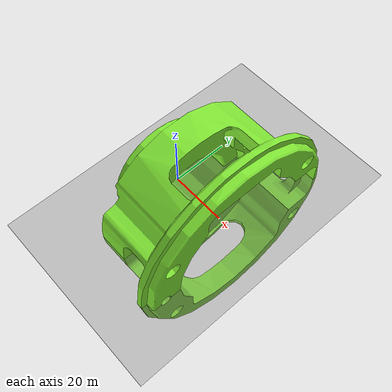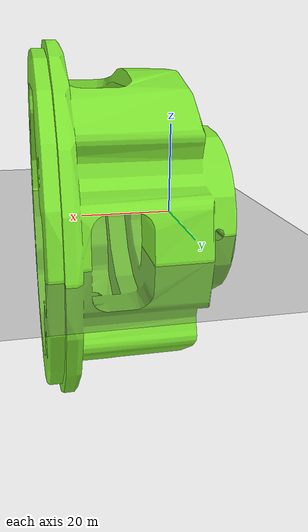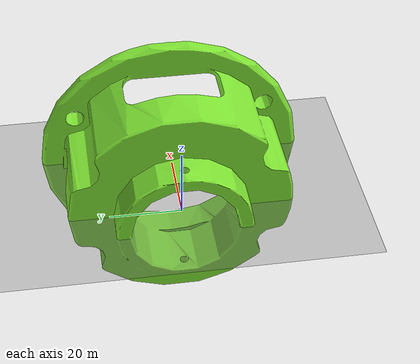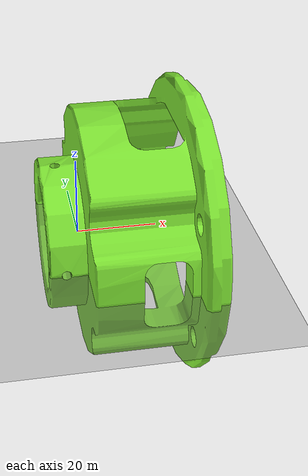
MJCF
<mujoco model="object place scene">
  <option timestep="0.002" gravity="0 0 -9.81" noslip_iterations="3"/>

  <include file="robot.xml"/>

  <default>
    <geom solref="0.001 1" solimp="0.99 0.99 0.001"/>
  </default>

  <visual>
    <headlight diffuse="0.6 0.6 0.6" ambient="0.3 0.3 0.3" specular="0 0 0"/>
    <rgba haze="0.15 0.25 0.35 1"/>
    <global azimuth="120" elevation="-20"/>
  </visual>

  <asset>
    <texture type="skybox" builtin="gradient" rgb1="0.3 0.5 0.7" rgb2="0 0 0" width="512" height="3072"/>
    <texture
      type="2d"
      name="groundplane"
      builtin="checker"
      mark="edge"
      rgb1="0.2 0.3 0.4"
      rgb2="0.1 0.2 0.3"
      markrgb="0.8 0.8 0.8"
      width="300"
      height="300"
    />
    <material name="groundplane" reflectance="0." texture="texplane" texrepeat="1 1" texuniform="true"/>
    <material name="cube_material" rgba="0.8 0.2 0.2 1"/>
    <material name="triangle_material" rgba="0.2 0.8 0.2 1"/>
    <material name="cylinder_material" rgba="0.2 0.2 0.8 1"/>
    <material name="place_mat" rgba="0.95 0.85 0.35 0.95"/>
    <material name="place_collision_mat" rgba="0.95 0.85 0.35 0.25"/>

    <mesh name="triangle_mesh" file="triangle.stl" scale="0.001 0.001 0.001"/>
    <mesh name="cylinder_mesh" file="cylinder.stl" scale="0.001 0.001 0.001"/>
    <mesh name="cube_place_mesh" file="cube_place.stl" scale="0.001 0.001 0.001"/>
    <mesh name="tri_place_mesh" file="tri_place.stl" scale="0.001 0.001 0.001"/>
    <mesh name="cyl_place_mesh" file="cylindrical_place.stl" scale="0.001 0.001 0.001"/>
  </asset>

  <worldbody>
    <light pos="0 0 1.5" dir="0 0 -1" directional="true"/>

    <camera
      name="watching"
      pos="1.669 -1.154 1.019"
      xyaxes="0.644 0.765 0.000 -0.250 0.210 0.945"
    />

    <geom name="floor" size="0 0 0.05" type="plane" material="groundplane"/>

    <body name="target_body" pos="0. 0. 0.">
      <site
        name="target"
        pos="0.245 0.10 0.02"
        size=".01 .01 .01"
        rgba="1 0.0 0.0 1"
        type="sphere"
      />
    </body>

    <body name="cube_place" pos="0.23 0.10 0.0">
      <geom
        name="cube_place_visual"
        type="mesh"
        mesh="cube_place_mesh"
        material="place_mat"
        pos="-0.1446836 -0.1472719 0.00"
        contype="0"
        conaffinity="0"
      />
      <geom
        name="cube_place_geom"
        type="box"
        pos="0.015 0 0.00"
        size="0.021 0.021 0.003"
        material="place_collision_mat"
        friction="1.2 0.05 0.01"
        condim="4"
        contype="1"
        conaffinity="1"
      />
      <geom
        name="cube_place_wall_front"
        type="box"
        pos="0.015 0.024 0.015"
        size="0.021 0.003 0.015"
        material="place_collision_mat"
        friction="1.2 0.05 0.01"
        condim="4"
        contype="1"
        conaffinity="1"
      />

      <geom
        name="cube_place_wall_back"
        type="box"
        pos="0.015 -0.024 0.015"
        size="0.021 0.003 0.015"
        material="place_collision_mat"
        friction="1.2 0.05 0.01"
        condim="4"
        contype="1"
        conaffinity="1"
      />

      <geom
        name="cube_place_wall_left"
        type="box"
        pos="-0.009 0 0.015"
        size="0.003 0.021 0.015"
        material="place_collision_mat"
        friction="1.2 0.05 0.01"
        condim="4"
        contype="1"
        conaffinity="1"
      />

      <geom
        name="cube_place_wall_right"
        type="box"
        pos="0.039 0 0.015"
        size="0.003 0.021 0.015"
        material="place_collision_mat"
        friction="1.2 0.05 0.01"
        condim="4"
        contype="1"
        conaffinity="1"
      />

      <site
        name="cube_place_site"
        pos="0.015 0 0.02"
        size="0.006"
        rgba="1 1 0 1"
        type="sphere"
      />
    </body>

    <body name="obj_box" pos="0.20 0.00 0.025">
      <freejoint name="obj_box_joint"/>
      <geom
        name="obj_box_geom"
        type="box"
        size="0.015 0.015 0.015"
        mass="0.03"
        material="cube_material"
      />
      <site
        name="obj_box_ref"
        pos="0 0 0"
        size="0.01 0.01 0.01"
        rgba="1 0.5 0.5 1"
        type="sphere"
      />
    </body>

  </worldbody>
</mujoco>

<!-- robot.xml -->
<mujoco model="mycobot">
    <option integrator="implicitfast" noslip_iterations="1"/>

    <compiler angle="radian" meshdir="meshes" autolimits="true" />

    <default>
        <joint armature="0.1" damping="1" axis="0 0 1" range="-2.8973 2.8973"/>
        <geom condim="4" contype="1" conaffinity="15" friction="0.9 0.2 0.2" solref="0.001 2" />
        <motor ctrllimited="true" />
        <equality solref="0.001 2" />
        <default class="visualgeom">
            <geom material="visualgeom" condim="1" contype="0" conaffinity="0" />
        </default>
    </default>

    <asset>
        <mesh name="link1" file="link1.stl" scale="0.001 0.001 0.001" />
        <mesh name="link2" file="link2.stl" />
        <mesh name="link3" file="link3.stl" />
        <mesh name="link4" file="link4.stl" />
        <mesh name="link5" file="link5.stl" />
        <mesh name="link6" file="link6.stl" />
        <mesh name="flange" file="flange.stl" />

        <mesh name="gripper_base" file="base_link2.stl" scale="0.001 0.001 0.001" />
        <mesh name="gripper_rail" file="gripper_rail_base1.stl" scale="0.001 0.001 0.001" />
        <mesh name="finger_left" file="gripper_finger_21.stl" scale="0.001 0.001 0.001" />
        <mesh name="finger_right" file="gripper_finger1.stl" scale="0.001 0.001 0.001" />

        <texture name="texplane" type="2d" builtin="checker" rgb1=".0 .0 .0" rgb2=".8 .8 .8" width="100" height="100" />
        <material name="matplane" reflectance="0." texture="texplane" texrepeat="1 1" texuniform="true" />
        <material name="visualgeom" rgba="0.5 0.9 0.2 1" />
        <material name="silver" rgba="0.7 0.7 0.7 1" />
    </asset>

    <worldbody>
        <light directional="true" diffuse="0.4 0.4 0.4" specular="0.1 0.1 0.1" pos="0 0 5.0" dir="0 0 -1" castshadow="false" />
        <light directional="true" diffuse="0.6 0.6 0.6" specular="0.2 0.2 0.2" pos="0 0 4" dir="0 0 -1" />
        <geom name="ground" type="plane" pos="0 0 0" size="100 100 0.001" quat="1 0 0 0" material="matplane" condim="3" conaffinity="15" />
        <camera name="fixed" pos="0 -3.0 0.5196343916714328" xyaxes="1 0 0 0 0 1" />
        <camera name="track" mode="trackcom" pos="0 -3.0 0.5196343916714328" xyaxes="1 0 0 0 0 1" />
        <body name="root" pos="0 0 0">
        <geom type="mesh" mesh="link1" contype="1" conaffinity="0" density="0" group="1" class="visualgeom" />
        <geom type="mesh" mesh="link1" />

        <body name="link2" pos="0 0 0.13956">
            <inertial pos="0 0 0" mass="1.5" diaginertia="0.01 0.01 0.01" />
            <joint name="link2_to_link1" axis="0 0 1" range="-2.9321 2.9321" />
            <geom pos="0 0 -0.06096" quat="0.707105 0 0 -0.707108" type="mesh" mesh="link2" class="visualgeom" />
            <geom type="mesh" mesh="link2" pos="0 0 -0.06096" quat="0.707105 0 0 -0.707108" />

            <body name="link3" pos="0 0 -0.001" quat="0.499998 0.500002 0.5 -0.5">
            <inertial pos="0 0 0" mass="1.2" diaginertia="0.008 0.008 0.008" />
            <joint name="link3_to_link2" axis="0 0 1" range="-2.3561 2.3561" />
            <geom pos="0 0 0.03256" quat="0.707105 0 -0.707108 0" type="mesh" mesh="link3" class="visualgeom" />
            <geom type="mesh" mesh="link3" pos="0 0 0.03256" quat="0.707105 0 -0.707108 0" />

                <body name="link4" pos="-0.1104 0 0">
                    <inertial pos="0 0 0" mass="1" diaginertia="0.005 0.005 0.005" />
                    <joint name="link4_to_link3" axis="0 0 1" range="-2.6179 2.6179" />
                    <geom pos="0 0 0.03056" quat="0.707105 0 -0.707108 0" type="mesh" mesh="link4" class="visualgeom" />
                    <geom type="mesh" mesh="link4" pos="0 0 0.03056" quat="0.707105 0 -0.707108 0" />
                        <body name="link5" pos="-0.096 0 0.06462" quat="0.707105 0 0 -0.707108">
                        <inertial pos="0 0 0" mass="0.8" diaginertia="0.003 0.003 0.003" />
                        <joint name="link5_to_link4" axis="0 0 1" range="-2.5307 2.5307" />
                        <geom pos="0 -0.001 -0.0345" quat="0.499998 0.500002 -0.5 0.5" type="mesh" mesh="link5" class="visualgeom" />
                        <geom type="mesh" mesh="link5" pos="0 -0.001 -0.0345" quat="0.499998 0.500002 -0.5 0.5" />

                        <body name="link6" pos="0 -0.07318 -0.001" quat="0.499998 0.5 -0.5 0.500002">
                            <inertial pos="0 0 0" mass="0.5" diaginertia="0.002 0.002 0.002" />
                            <joint name="link6_to_link5" axis="0 0 1" range="-2.8797 2.8797" />
                            <geom pos="0 0 -0.038" type="mesh" mesh="link6" class="visualgeom" />
                            <geom type="mesh" mesh="link6" pos="0 0 -0.038" />

                            <body name="link6_flange" pos="0 0.0456 0" quat="0.707105 -0.707108 0 0">
                            <site name="attachment_site" pos="0 0.0 0.075" size="0.005" rgba="1 0 0 1" group="1" quat="0 0.707 -0.707 0"/>
                            <inertial pos="0.000969617 3.10966e-05 0.0070873" quat="0.997515 -0.0019461 0.0697529 -0.00976369" mass="0.3" diaginertia="0.00103948 0.00103651 0.00100478" />
                            <joint name="link6output_to_link6" axis="0 0 1" range="-3.14 3.14159" />
                            <geom pos="0 0 -0.012" type="mesh" mesh="flange" class="visualgeom" />
                            <geom type="mesh" mesh="flange" pos="0 0 -0.012" />

                            <body name="gripper_base" pos="0 0 0" quat="1 0 0 0">
                                <geom type="mesh" mesh="gripper_base" material="silver" />

                                <body name="gripper_rail" pos="0 0 0" quat="1 0 0 0">
                                <geom type="mesh" mesh="gripper_rail" material="silver" />

                                <body name="finger_left" pos="0 0 0">
                                    <inertial pos="0 -0.017022 0.0224353" quat="0.947802 0.318861 0 0" mass="0.03" diaginertia="0.000211896 0.000211896 0.0002" />
                                    <joint name="Slider_10" type="slide" axis="1 0 0" range="-0.02 0.01" />
                                    <geom type="mesh" mesh="finger_left" pos="0 0 0" material="silver" contype="0" conaffinity="0" group="1"/>
                                    <geom name="finger_left_pad" type="box" size="0.002 0.015 0.01" pos="0.022 0.0 0.07" friction="2.0 0.05 0.0001" solref="0.02 1" contype="2" conaffinity="5" rgba="0.3 0.3 0.3 1" />
                                </body>

                                <body name="finger_right" pos="0 0 0">
                                    <inertial pos="0 0.01688 0.022582" quat="0.948936 -0.315467 0 0" mass="0.03" diaginertia="0.000211923 0.000211923 0.0002" />
                                    <joint name="Slider_11" type="slide" axis="1 0 0" range="-0.01 0.02" />
                                    <geom type="mesh" mesh="finger_right" pos="0 0 0" material="silver" contype="0" conaffinity="0" group="1"/>
                                    <geom name="finger_right_pad" type="box" size="0.002 0.015 0.01" pos="-0.022 0.0 0.07" friction="2.0 0.05 0.0001" solref="0.02 1" contype="2" conaffinity="5" rgba="0.3 0.3 0.3 1" />
                                </body>
                                </body>
                            </body>
                            </body>
                        </body>
                        </body>
                    </body>
                    </body>
                </body>
                </body>
    </worldbody>

  <actuator>
    <position name="link2_to_link1" joint="link2_to_link1" ctrllimited="true" ctrlrange="-2.9321 2.9321" kp="500" kv="50" />
    <position name="link3_to_link2" joint="link3_to_link2" ctrllimited="true" ctrlrange="-2.3561 2.3561" kp="500" kv="50" />
    <position name="link4_to_link3" joint="link4_to_link3" ctrllimited="true" ctrlrange="-2.6179 2.6179" kp="400" kv="40" />
    <position name="link5_to_link4" joint="link5_to_link4" ctrllimited="true" ctrlrange="-2.5307 2.5307" kp="300" kv="30" />
    <position name="link6_to_link5" joint="link6_to_link5" ctrllimited="true" ctrlrange="-2.8797 2.8797" kp="200" kv="20" />
    <position name="link6output_to_link6" joint="link6output_to_link6" ctrllimited="true" ctrlrange="-3.1416 3.1416" kp="10" />
    <position name="gripper_l" joint="Slider_10" ctrlrange="-0.02 0.02" kp="100" kv="20" />
    <position name="gripper_r" joint="Slider_11" ctrlrange="-0.02 0.02" kp="100" kv="20" />
  </actuator>

  <contact>
    <exclude body1="root" body2="link2"/>
    <exclude body1="link2" body2="link3"/>
    <exclude body1="link3" body2="link4"/>
    <exclude body1="link4" body2="link5"/>
    <exclude body1="link5" body2="link6"/>
    <exclude body1="link6_flange" body2="gripper_base"/>
    <exclude body1="gripper_base" body2="gripper_rail"/>
    <exclude body1="finger_left" body2="finger_right"/>
    <exclude body1="gripper_base" body2="finger_left"/>
    <exclude body1="gripper_base" body2="finger_right"/>
    <exclude body1="gripper_rail" body2="finger_left"/>
    <exclude body1="gripper_rail" body2="finger_right"/>
  </contact>
</mujoco>
